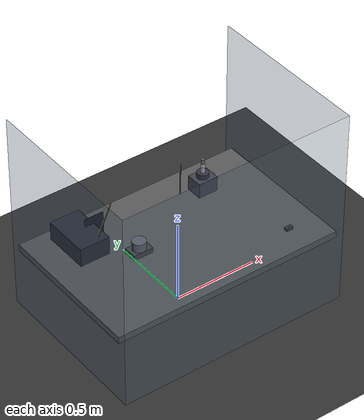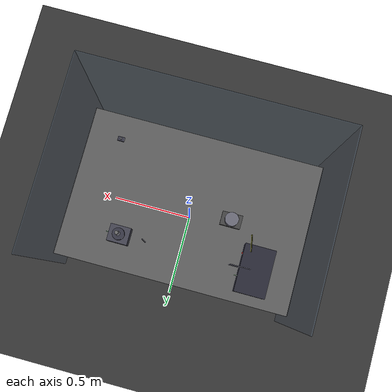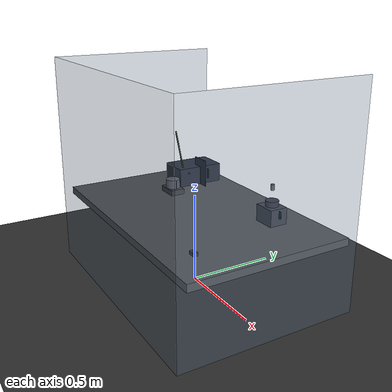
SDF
<?xml version="1.0" ?>
<sdf version="1.6">
  <world name="electrospin_lab">

    <!-- Physics -->
    <physics type="ode">
      <max_step_size>0.001</max_step_size>
      <real_time_factor>1.0</real_time_factor>
      <gravity>0 0 -9.81</gravity>
    </physics>

    <!-- Scene -->
    <scene>
      <ambient>0.4 0.4 0.4 1</ambient>
      <background>0.05 0.05 0.1 1</background>
      <shadows>1</shadows>
    </scene>

    <!-- Sun -->
    <light type="directional" name="sun">
      <cast_shadows>1</cast_shadows>
      <pose>0 0 10 0 0 0</pose>
      <diffuse>0.8 0.8 0.8 1</diffuse>
      <specular>0.3 0.3 0.3 1</specular>
      <attenuation>
        <range>1000</range>
        <constant>0.9</constant>
        <linear>0.01</linear>
        <quadratic>0.001</quadratic>
      </attenuation>
      <direction>-0.5 0.1 -0.9</direction>
    </light>

    <!-- Lab overhead light -->
    <light type="point" name="lab_light">
      <pose>0 0 3 0 0 0</pose>
      <diffuse>0.6 0.6 0.65 1</diffuse>
      <specular>0.2 0.2 0.2 1</specular>
      <attenuation>
        <range>20</range>
        <constant>0.5</constant>
        <linear>0.1</linear>
        <quadratic>0.01</quadratic>
      </attenuation>
    </light>

    <!-- Ground plane -->
    <model name="ground_plane">
      <static>1</static>
      <link name="link">
        <collision name="collision">
          <geometry>
            <plane>
              <normal>0 0 1</normal>
              <size>100 100</size>
            </plane>
          </geometry>
        </collision>
        <visual name="visual">
          <geometry>
            <plane>
              <normal>0 0 1</normal>
              <size>100 100</size>
            </plane>
          </geometry>
          <material>
            <ambient>0.15 0.15 0.15 1</ambient>
            <diffuse>0.2 0.2 0.2 1</diffuse>
          </material>
        </visual>
      </link>
    </model>

    <!-- Lab workbench -->
    <model name="workbench">
      <static>1</static>
      <pose>0 0 0.4 0 0 0</pose>
      <link name="link">
        <collision name="collision">
          <geometry>
            <box>
              <size>1.4 0.9 0.04</size>
            </box>
          </geometry>
        </collision>
        <visual name="top">
          <geometry>
            <box>
              <size>1.4 0.9 0.04</size>
            </box>
          </geometry>
          <material>
            <ambient>0.3 0.3 0.3 1</ambient>
            <diffuse>0.35 0.35 0.35 1</diffuse>
          </material>
        </visual>
      </link>
    </model>

    <!-- Safety enclosure (transparent walls) -->
    <model name="safety_enclosure">
      <static>1</static>
      <pose>0 0 0 0 0 0</pose>
      <link name="link">
        <collision name="back_collision">
          <pose>0 -0.5 0.6 0 0 0</pose>
          <geometry><box><size>1.4 0.01 1.2</size></box></geometry>
        </collision>
        <visual name="back">
          <pose>0 -0.5 0.6 0 0 0</pose>
          <geometry><box><size>1.4 0.005 1.2</size></box></geometry>
          <material><ambient>0.2 0.3 0.4 0.3</ambient><diffuse>0.3 0.4 0.5 0.3</diffuse></material>
        </visual>
        <collision name="left_collision">
          <pose>-0.7 0 0.6 0 0 0</pose>
          <geometry><box><size>0.01 1.0 1.2</size></box></geometry>
        </collision>
        <visual name="left">
          <pose>-0.7 0 0.6 0 0 0</pose>
          <geometry><box><size>0.005 1.0 1.2</size></box></geometry>
          <material><ambient>0.2 0.3 0.4 0.3</ambient><diffuse>0.3 0.4 0.5 0.3</diffuse></material>
        </visual>
        <collision name="right_collision">
          <pose>0.7 0 0.6 0 0 0</pose>
          <geometry><box><size>0.01 1.0 1.2</size></box></geometry>
        </collision>
        <visual name="right">
          <pose>0.7 0 0.6 0 0 0</pose>
          <geometry><box><size>0.005 1.0 1.2</size></box></geometry>
          <material><ambient>0.2 0.3 0.4 0.3</ambient><diffuse>0.3 0.4 0.5 0.3</diffuse></material>
        </visual>
      </link>
    </model>

    <model name="peristaltic_pump">
      <pose>0.35 0.25 0.46 0 0 0</pose>
      <link name="pump_base">
        <pose>0 0 0 0 0 0</pose>
        <inertial>
          <mass>2.5</mass>
          <inertia>
            <ixx>0.01</ixx><ixy>0</ixy><ixz>0</ixz>
            <iyy>0.012</iyy><iyz>0</iyz><izz>0.008</izz>
          </inertia>
        </inertial>
        <collision name="body_collision">
          <geometry><box><size>0.12 0.10 0.10</size></box></geometry>
        </collision>
        <visual name="body">
          <geometry><box><size>0.12 0.10 0.10</size></box></geometry>
          <material>
            <ambient>0.2 0.2 0.25 1</ambient>
            <diffuse>0.25 0.25 0.3 1</diffuse>
          </material>
        </visual>
        <visual name="head_housing">
          <pose>0 0 0.06 0 0 0</pose>
          <geometry><cylinder><radius>0.035</radius><length>0.04</length></cylinder></geometry>
          <material>
            <ambient>0.15 0.15 0.2 1</ambient>
            <diffuse>0.2 0.2 0.25 1</diffuse>
          </material>
        </visual>
        <visual name="display">
          <pose>0.061 0 0.02 0 1.5708 0</pose>
          <geometry><box><size>0.04 0.001 0.03</size></box></geometry>
          <material>
            <ambient>0.0 0.15 0.0 1</ambient>
            <diffuse>0.0 0.2 0.05 1</diffuse>
            <emissive>0.0 0.3 0.05 1</emissive>
          </material>
        </visual>
      </link>

      <!-- Rotating roller head -->
      <link name="pump_roller">
        <pose>0 0 0.06 0 0 0</pose>
        <inertial>
          <mass>0.1</mass>
          <inertia>
            <ixx>0.0001</ixx><ixy>0</ixy><ixz>0</ixz>
            <iyy>0.0001</iyy><iyz>0</iyz><izz>0.00005</izz>
          </inertia>
        </inertial>
        <visual name="roller_hub">
          <geometry><cylinder><radius>0.015</radius><length>0.035</length></cylinder></geometry>
          <material>
            <ambient>0.4 0.4 0.4 1</ambient>
            <diffuse>0.5 0.5 0.5 1</diffuse>
          </material>
        </visual>
        <visual name="roller1">
          <pose>0.025 0 0 0 0 0</pose>
          <geometry><cylinder><radius>0.006</radius><length>0.03</length></cylinder></geometry>
          <material><ambient>0.3 0.3 0.3 1</ambient><diffuse>0.4 0.4 0.4 1</diffuse></material>
        </visual>
        <visual name="roller2">
          <pose>-0.0125 0.0217 0 0 0 0</pose>
          <geometry><cylinder><radius>0.006</radius><length>0.03</length></cylinder></geometry>
          <material><ambient>0.3 0.3 0.3 1</ambient><diffuse>0.4 0.4 0.4 1</diffuse></material>
        </visual>
        <visual name="roller3">
          <pose>-0.0125 -0.0217 0 0 0 0</pose>
          <geometry><cylinder><radius>0.006</radius><length>0.03</length></cylinder></geometry>
          <material><ambient>0.3 0.3 0.3 1</ambient><diffuse>0.4 0.4 0.4 1</diffuse></material>
        </visual>
      </link>

      <joint name="pump_roller_joint" type="revolute">
        <parent>pump_base</parent>
        <child>pump_roller</child>
        <pose>0 0 0.06 0 0 0</pose>
        <axis>
          <xyz>0 0 1</xyz>
          <limit>
            <lower>-1e16</lower>
            <upper>1e16</upper>
          </limit>
        </axis>
      </joint>

      <!-- Tubing -->
      <link name="pump_tubing">
        <visual name="tube">
          <pose>-0.15 0 0.02 0 0 0.3</pose>
          <geometry><cylinder><radius>0.003</radius><length>0.35</length></cylinder></geometry>
          <material>
            <ambient>0.1 0.1 0.15 1</ambient>
            <diffuse>0.15 0.15 0.2 0.8</diffuse>
          </material>
        </visual>
      </link>
      <joint name="tubing_joint" type="fixed">
        <parent>pump_base</parent>
        <child>pump_tubing</child>
      </joint>
    </model>

    <model name="collector_drum">
      <pose>-0.25 0.0 0.46 0 0 0</pose>
      <link name="collector_base_link">
        <inertial>
          <mass>3.0</mass>
          <inertia>
            <ixx>0.02</ixx><ixy>0</ixy><ixz>0</ixz>
            <iyy>0.02</iyy><iyz>0</iyz><izz>0.01</izz>
          </inertia>
        </inertial>
        <collision name="base_collision">
          <geometry><box><size>0.12 0.08 0.03</size></box></geometry>
        </collision>
        <visual name="base">
          <geometry><box><size>0.12 0.08 0.03</size></box></geometry>
          <material>
            <ambient>0.2 0.2 0.2 1</ambient>
            <diffuse>0.25 0.25 0.25 1</diffuse>
          </material>
        </visual>
        <visual name="motor_housing">
          <pose>0 0 0.025 0 0 0</pose>
          <geometry><cylinder><radius>0.025</radius><length>0.02</length></cylinder></geometry>
          <material>
            <ambient>0.15 0.15 0.2 1</ambient>
            <diffuse>0.2 0.2 0.25 1</diffuse>
          </material>
        </visual>
      </link>

      <!-- Rotating drum -->
      <link name="drum_link">
        <pose>0 0 0.035 0 0 0</pose>
        <inertial>
          <mass>0.8</mass>
          <inertia>
            <ixx>0.003</ixx><ixy>0</ixy><ixz>0</ixz>
            <iyy>0.003</iyy><iyz>0</iyz><izz>0.0015</izz>
          </inertia>
        </inertial>
        <collision name="drum_collision">
          <geometry><cylinder><radius>0.04</radius><length>0.06</length></cylinder></geometry>
        </collision>
        <visual name="drum">
          <geometry><cylinder><radius>0.04</radius><length>0.06</length></cylinder></geometry>
          <material>
            <ambient>0.35 0.35 0.4 1</ambient>
            <diffuse>0.4 0.4 0.45 1</diffuse>
            <specular>0.6 0.6 0.6 1</specular>
          </material>
        </visual>
        <visual name="mark1">
          <pose>0.04 0 0 0 0 0</pose>
          <geometry><box><size>0.001 0.002 0.06</size></box></geometry>
          <material><ambient>0.1 0.1 0.1 1</ambient><diffuse>0.15 0.15 0.15 1</diffuse></material>
        </visual>
        <visual name="mark2">
          <pose>-0.04 0 0 0 0 0</pose>
          <geometry><box><size>0.001 0.002 0.06</size></box></geometry>
          <material><ambient>0.1 0.1 0.1 1</ambient><diffuse>0.15 0.15 0.15 1</diffuse></material>
        </visual>
      </link>

      <joint name="drum_rotation_joint" type="revolute">
        <parent>collector_base_link</parent>
        <child>drum_link</child>
        <pose>0 0 0.035 0 0 0</pose>
        <axis>
          <xyz>0 0 1</xyz>
          <limit>
            <lower>-1e16</lower>
            <upper>1e16</upper>
          </limit>
        </axis>
      </joint>
    </model>

    <model name="hv_power_supply">
      <pose>-0.45 0.25 0.46 0 0 0</pose>
      <static>1</static>
      <link name="hv_base">
        <collision name="body_collision">
          <geometry><box><size>0.18 0.28 0.14</size></box></geometry>
        </collision>
        <visual name="body">
          <geometry><box><size>0.18 0.28 0.14</size></box></geometry>
          <material>
            <ambient>0.1 0.1 0.15 1</ambient>
            <diffuse>0.15 0.15 0.2 1</diffuse>
          </material>
        </visual>
        <visual name="panel">
          <pose>0.091 0 0 0 1.5708 0</pose>
          <geometry><box><size>0.24 0.001 0.12</size></box></geometry>
          <material>
            <ambient>0.05 0.05 0.08 1</ambient>
            <diffuse>0.08 0.08 0.12 1</diffuse>
          </material>
        </visual>
        <visual name="voltage_display">
          <pose>0.092 0.05 0.02 0 1.5708 0</pose>
          <geometry><box><size>0.06 0.001 0.03</size></box></geometry>
          <material>
            <ambient>0.0 0.1 0.0 1</ambient>
            <diffuse>0.0 0.15 0.0 1</diffuse>
            <emissive>0.0 0.25 0.0 1</emissive>
          </material>
        </visual>
        <visual name="status_led">
          <pose>0.092 -0.08 0.04 0 1.5708 0</pose>
          <geometry><sphere><radius>0.005</radius></sphere></geometry>
          <material>
            <ambient>0.5 0.0 0.0 1</ambient>
            <diffuse>0.8 0.0 0.0 1</diffuse>
            <emissive>0.3 0.0 0.0 1</emissive>
          </material>
        </visual>
        <visual name="hv_cable">
          <pose>0.05 -0.1 0.07 0.3 0 0.5</pose>
          <geometry><cylinder><radius>0.004</radius><length>0.5</length></cylinder></geometry>
          <material>
            <ambient>0.15 0.15 0.0 1</ambient>
            <diffuse>0.2 0.2 0.0 1</diffuse>
          </material>
        </visual>
      </link>
    </model>

    <model name="env_sensor">
      <pose>0.5 -0.3 0.44 0 0 0</pose>
      <static>1</static>
      <link name="sensor_base">
        <visual name="body">
          <geometry><box><size>0.04 0.025 0.015</size></box></geometry>
          <material>
            <ambient>0.15 0.15 0.2 1</ambient>
            <diffuse>0.2 0.2 0.25 1</diffuse>
          </material>
        </visual>
        <visual name="probe">
          <pose>0 0 0.012 0 0 0</pose>
          <geometry><cylinder><radius>0.004</radius><length>0.01</length></cylinder></geometry>
          <material>
            <ambient>0.4 0.4 0.4 1</ambient>
            <diffuse>0.5 0.5 0.5 1</diffuse>
          </material>
        </visual>
      </link>
    </model>

    <model name="fiber_deposition">
      <pose>-0.25 0.0 0.50 0 0 0</pose>
      <static>1</static>
      <link name="deposition_layer">
        <visual name="fibers">
          <geometry><cylinder><radius>0.038</radius><length>0.001</length></cylinder></geometry>
          <material>
            <ambient>0.9 0.9 0.95 0.3</ambient>
            <diffuse>0.95 0.95 1.0 0.4</diffuse>
          </material>
        </visual>
      </link>
    </model>

    <!-- Syringe on pump -->
    <model name="syringe">
      <pose>0.35 0.25 0.56 0 0 0</pose>
      <static>1</static>
      <link name="syringe_body">
        <visual name="barrel">
          <geometry><cylinder><radius>0.012</radius><length>0.08</length></cylinder></geometry>
          <material>
            <ambient>0.7 0.7 0.75 0.8</ambient>
            <diffuse>0.8 0.8 0.85 0.8</diffuse>
          </material>
        </visual>
        <visual name="plunger">
          <pose>0 0 0.05 0 0 0</pose>
          <geometry><cylinder><radius>0.01</radius><length>0.03</length></cylinder></geometry>
          <material>
            <ambient>0.3 0.3 0.3 1</ambient>
            <diffuse>0.4 0.4 0.4 1</diffuse>
          </material>
        </visual>
        <visual name="needle">
          <pose>0 0 -0.05 0 0 0</pose>
          <geometry><cylinder><radius>0.002</radius><length>0.02</length></cylinder></geometry>
          <material>
            <ambient>0.6 0.6 0.65 1</ambient>
            <diffuse>0.7 0.7 0.75 1</diffuse>
          </material>
        </visual>
      </link>
    </model>

  </world>
</sdf>
